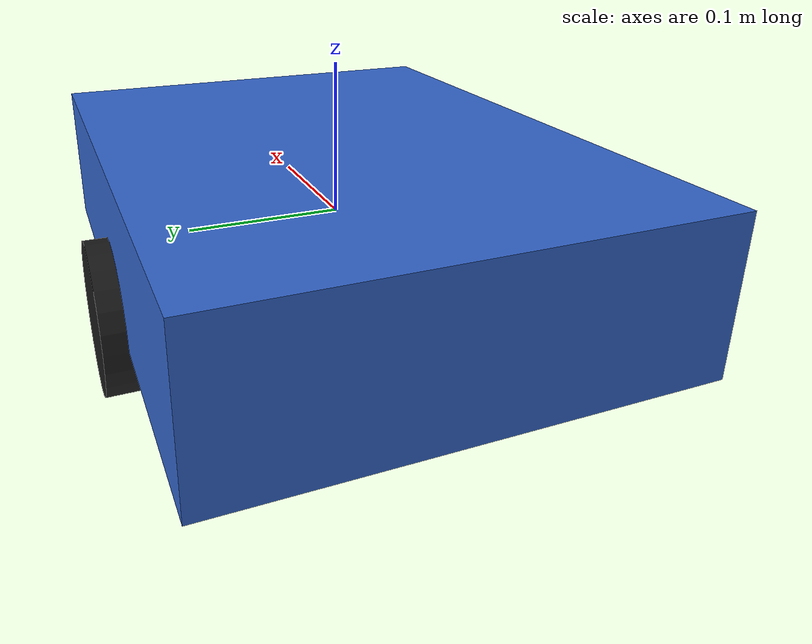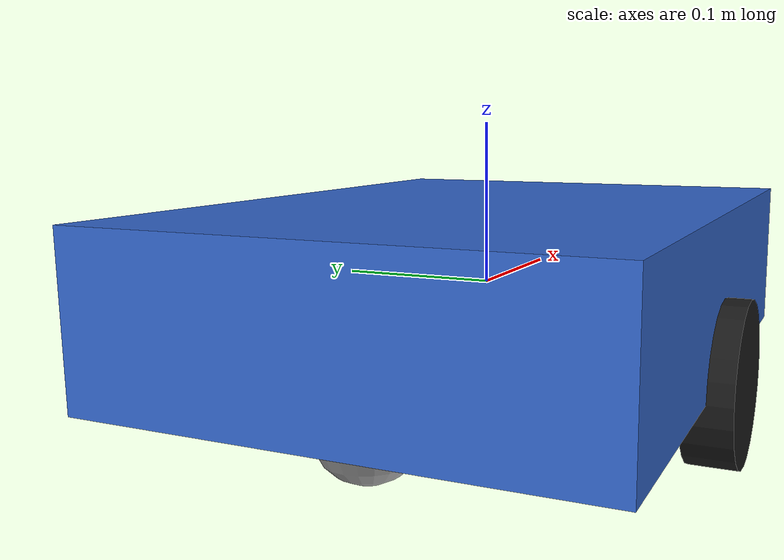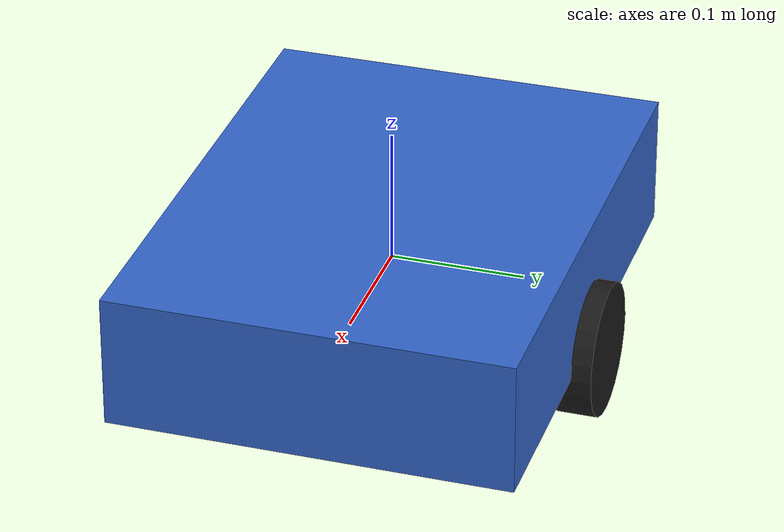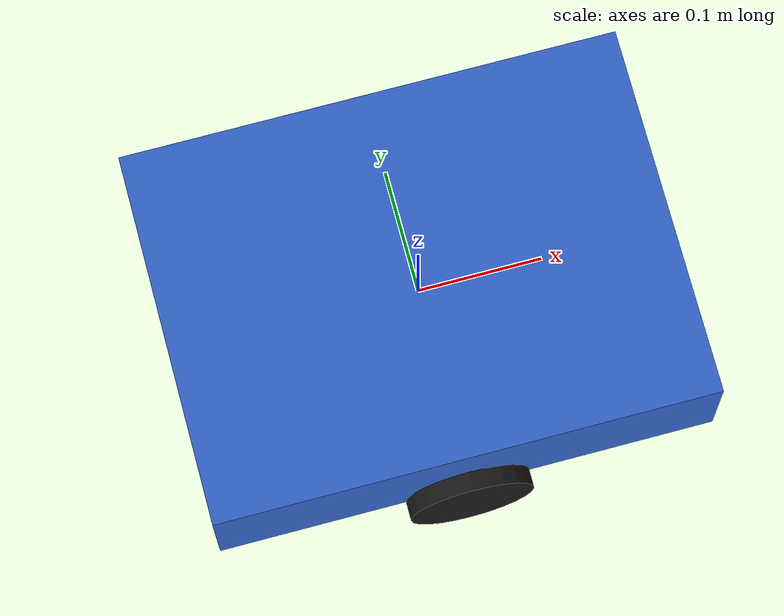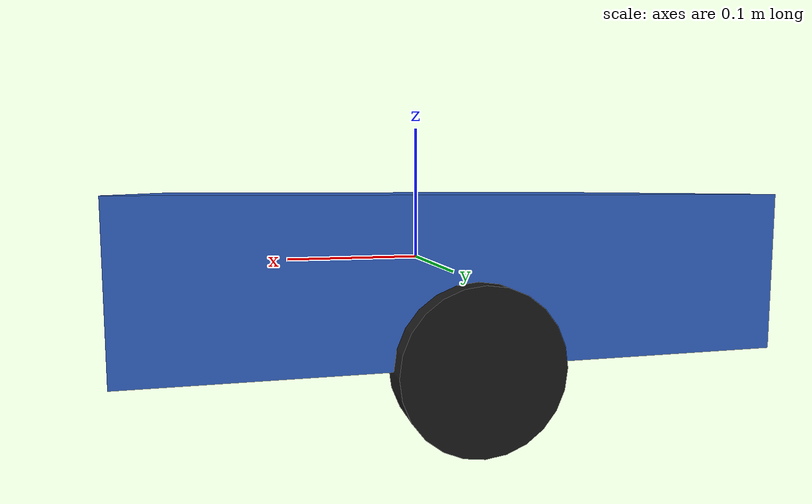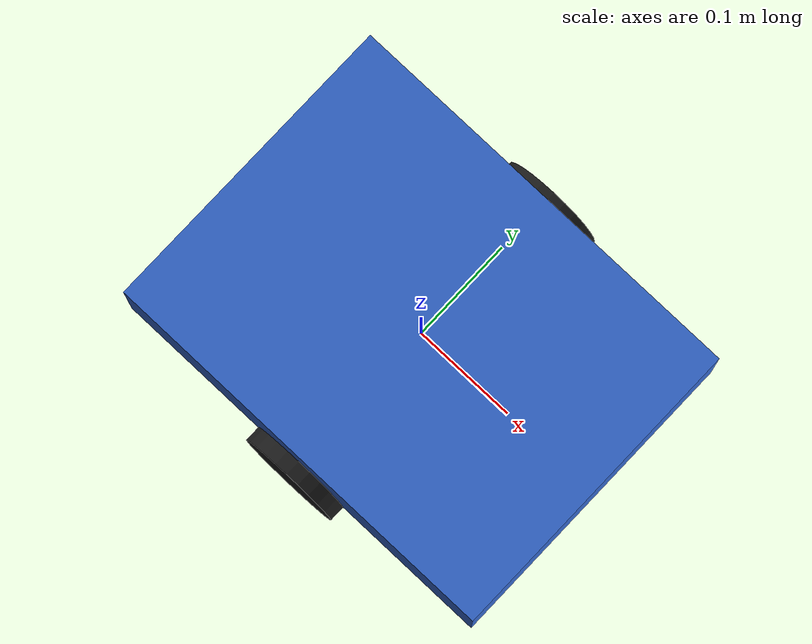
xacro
<?xml version="1.0"?>

<robot name="diff_drive_robot"
       xmlns:xacro="http://www.ros.org/wiki/xacro">

    <!-- Robot Dimensions -->

    <!-- Base dimensions -->
    <xacro:property name="base_length" value="0.40"/>
    <xacro:property name="base_width"  value="0.30"/>
    <xacro:property name="base_height" value="0.10"/>

    <!-- Wheel dimensions -->
    <xacro:property name="wheel_radius" value="0.05"/>
    <xacro:property name="wheel_width"  value="0.03"/>

    <!-- Mass properties -->
    <xacro:property name="base_mass" value="5.0"/>
    <xacro:property name="wheel_mass" value="0.5"/>
    <xacro:property name="caster_mass" value="0.2"/>

    <!-- Include Robot Components -->

    <xacro:include filename="materials.xacro"/>

    <xacro:include filename="base.xacro"/>

    <xacro:include filename="wheels.xacro"/>

</robot>

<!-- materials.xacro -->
<robot xmlns:xacro="http://www.ros.org/wiki/xacro">

    <material name="blue">
        <color rgba="0.2 0.4 0.8 1.0"/>
    </material>

    <material name="black">
        <color rgba="0.1 0.1 0.1 1.0"/>
    </material>

    <material name="gray">
        <color rgba="0.6 0.6 0.6 1.0"/>
    </material>

</robot>

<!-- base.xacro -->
<robot xmlns:xacro="http://www.ros.org/wiki/xacro">

<link name="base_link">

    <!-- Visual Model -->

    <visual>

        <geometry>
            <box size="${base_length}
                       ${base_width}
                       ${base_height}"/>
        </geometry>

        <material name="blue"/>

    </visual>

    <!-- Collision Model -->

    <collision>

        <geometry>
            <box size="${base_length}
                       ${base_width}
                       ${base_height}"/>
        </geometry>

    </collision>

    <!-- Physical Properties -->

    <inertial>

        <mass value="${base_mass}"/>

        <inertia
            ixx="0.0417"
            ixy="0"
            ixz="0"
            iyy="0.0708"
            iyz="0"
            izz="0.1042"/>

    </inertial>

</link>

</robot>

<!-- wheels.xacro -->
<robot xmlns:xacro="http://www.ros.org/wiki/xacro">

    <!-- Left Wheel -->

    <link name="left_wheel">

        <visual>

            <origin rpy="1.5708 0 0"/>

            <geometry>
                <cylinder radius="${wheel_radius}"
                          length="${wheel_width}"/>
            </geometry>

            <material name="black"/>

        </visual>

        <collision>

            <origin rpy="1.5708 0 0"/>

            <geometry>
                <cylinder radius="${wheel_radius}"
                          length="${wheel_width}"/>
            </geometry>

        </collision>

        <inertial>

            <mass value="${wheel_mass}"/>

            <inertia
                ixx="0.0005"
                ixy="0"
                ixz="0"
                iyy="0.0005"
                iyz="0"
                izz="0.0006"/>

        </inertial>

    </link>

    <joint name="left_wheel_joint"
           type="continuous">

        <parent link="base_link"/>

        <child link="left_wheel"/>

        <origin xyz="0 0.15 -0.05"/>

        <axis xyz="0 1 0"/>

    </joint>

    <!-- Right Wheel -->

    <link name="right_wheel">

        <visual>

            <origin rpy="1.5708 0 0"/>

            <geometry>
                <cylinder radius="${wheel_radius}"
                          length="${wheel_width}"/>
            </geometry>

            <material name="black"/>

        </visual>

        <collision>

            <origin rpy="1.5708 0 0"/>

            <geometry>
                <cylinder radius="${wheel_radius}"
                          length="${wheel_width}"/>
            </geometry>

        </collision>

        <inertial>

            <mass value="${wheel_mass}"/>

            <inertia
                ixx="0.0005"
                ixy="0"
                ixz="0"
                iyy="0.0005"
                iyz="0"
                izz="0.0006"/>

        </inertial>

    </link>

    <joint name="right_wheel_joint"
           type="continuous">

        <parent link="base_link"/>

        <child link="right_wheel"/>

        <origin xyz="0 -0.15 -0.05"/>

        <axis xyz="0 1 0"/>

    </joint>

    <!-- Caster Wheel -->

    <link name="caster_wheel">

        <visual>

            <geometry>
                <sphere radius="0.03"/>
            </geometry>

            <material name="gray"/>

        </visual>

        <collision>

            <geometry>
                <sphere radius="0.03"/>
            </geometry>

        </collision>

        <inertial>

            <mass value="${caster_mass}"/>

            <inertia
                ixx="0.0001"
                ixy="0"
                ixz="0"
                iyy="0.0001"
                iyz="0"
                izz="0.0001"/>

        </inertial>

    </link>

    <joint name="caster_joint"
           type="fixed">

        <parent link="base_link"/>

        <child link="caster_wheel"/>

        <origin xyz="-0.15 0 -0.05"/>

    </joint>

</robot>
